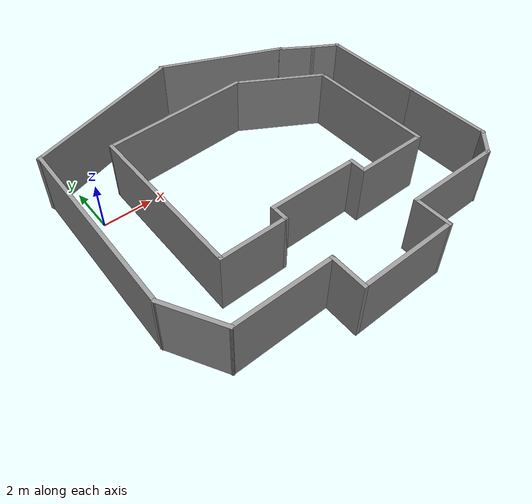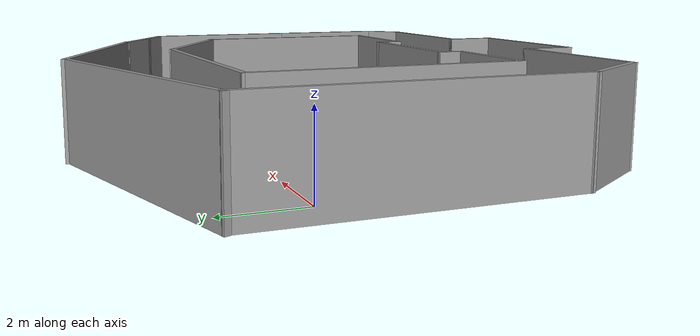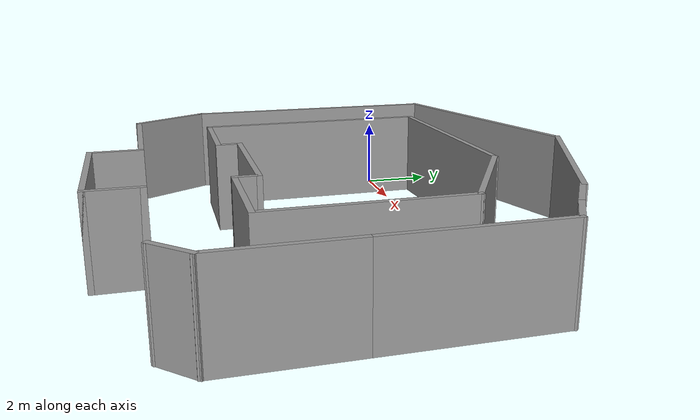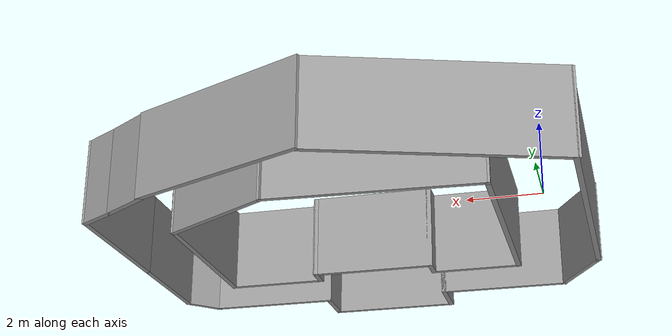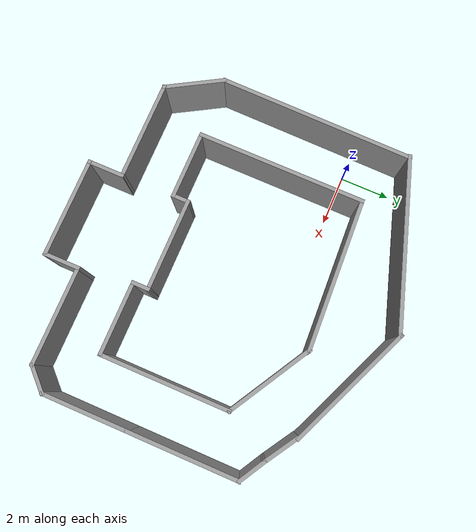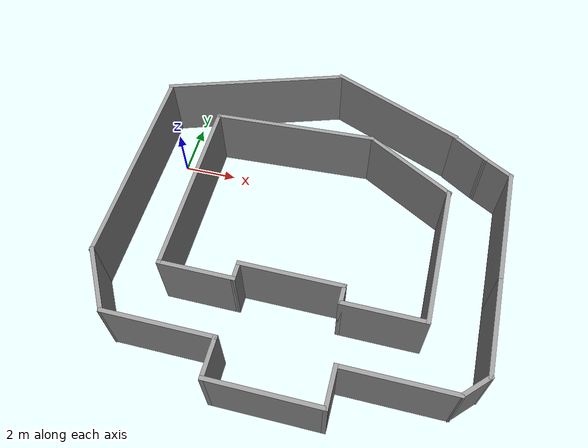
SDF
<?xml version='1.0'?>
<sdf version='1.6'>
  <model name='TrackModel'>
    <pose frame=''>5.68322 -2.42706 0 0 -0 0</pose>
    <link name='Wall_0'>
      <collision name='Wall_0_Collision'>
        <geometry>
          <box>
            <size>7.82505 0.15 2.5</size>
          </box>
        </geometry>
        <pose frame=''>0 0 1.25 0 -0 0</pose>
      </collision>
      <visual name='Wall_0_Visual'>
        <pose frame=''>0 0 1.25 0 -0 0</pose>
        <geometry>
          <box>
            <size>7.82505 0.15 2.5</size>
          </box>
        </geometry>
        <material>
          <script>
            <uri>file://media/materials/scripts/gazebo.material</uri>
            <name>Gazebo/Grey</name>
          </script>
          <ambient>1 1 1 1</ambient>
        </material>
        <meta>
          <layer>0</layer>
        </meta>
      </visual>
      <pose frame=''>-6.71276 0.604367 0 0 0 -1.58134</pose>
    </link>
    <link name='Wall_1'>
      <collision name='Wall_1_Collision'>
        <geometry>
          <box>
            <size>2.5 0.15 2.5</size>
          </box>
        </geometry>
        <pose frame=''>0 0 1.25 0 -0 0</pose>
      </collision>
      <visual name='Wall_1_Visual'>
        <pose frame=''>0 0 1.25 0 -0 0</pose>
        <geometry>
          <box>
            <size>2.5 0.15 2.5</size>
          </box>
        </geometry>
        <material>
          <script>
            <uri>file://media/materials/scripts/gazebo.material</uri>
            <name>Gazebo/Grey</name>
          </script>
          <ambient>1 1 1 1</ambient>
        </material>
        <meta>
          <layer>0</layer>
        </meta>
      </visual>
      <pose frame=''>-6.16572 -4.25052 0 0 0 -1.0472</pose>
    </link>
    <link name='Wall_10'>
      <collision name='Wall_10_Collision'>
        <geometry>
          <box>
            <size>1.25 0.15 2.5</size>
          </box>
        </geometry>
        <pose frame=''>0 0 1.25 0 -0 0</pose>
      </collision>
      <visual name='Wall_10_Visual'>
        <pose frame=''>0 0 1.25 0 -0 0</pose>
        <geometry>
          <box>
            <size>1.25 0.15 2.5</size>
          </box>
        </geometry>
        <material>
          <script>
            <uri>file://media/materials/scripts/gazebo.material</uri>
            <name>Gazebo/Grey</name>
          </script>
          <ambient>1 1 1 1</ambient>
        </material>
        <meta>
          <layer>0</layer>
        </meta>
      </visual>
      <pose frame=''>6.27329 3.48471 0 0 -0 2.61799</pose>
    </link>
    <link name='Wall_11'>
      <collision name='Wall_11_Collision'>
        <geometry>
          <box>
            <size>1.5716 0.15 2.5</size>
          </box>
        </geometry>
        <pose frame=''>0 0 1.25 0 -0 0</pose>
      </collision>
      <visual name='Wall_11_Visual'>
        <pose frame=''>0 0 1.25 0 -0 0</pose>
        <geometry>
          <box>
            <size>1.5716 0.15 2.5</size>
          </box>
        </geometry>
        <material>
          <script>
            <uri>file://media/materials/scripts/gazebo.material</uri>
            <name>Gazebo/Grey</name>
          </script>
          <ambient>1 1 1 1</ambient>
        </material>
        <meta>
          <layer>0</layer>
        </meta>
      </visual>
      <pose frame=''>5.19483 4.13742 0 0 -0 2.58135</pose>
    </link>
    <link name='Wall_12'>
      <collision name='Wall_12_Collision'>
        <geometry>
          <box>
            <size>5.41078 0.15 2.5</size>
          </box>
        </geometry>
        <pose frame=''>0 0 1.25 0 -0 0</pose>
      </collision>
      <visual name='Wall_12_Visual'>
        <pose frame=''>0 0 1.25 0 -0 0</pose>
        <geometry>
          <box>
            <size>5.41078 0.15 2.5</size>
          </box>
        </geometry>
        <material>
          <script>
            <uri>file://media/materials/scripts/gazebo.material</uri>
            <name>Gazebo/Grey</name>
          </script>
          <ambient>1 1 1 1</ambient>
        </material>
        <meta>
          <layer>0</layer>
        </meta>
      </visual>
      <pose frame=''>2.16798 5.57524 0 0 -0 2.74352</pose>
    </link>
    <link name='Wall_13'>
      <collision name='Wall_13_Collision'>
        <geometry>
          <box>
            <size>6.94294 0.15 2.5</size>
          </box>
        </geometry>
        <pose frame=''>0 0 1.25 0 -0 0</pose>
      </collision>
      <visual name='Wall_13_Visual'>
        <pose frame=''>0 0 1.25 0 -0 0</pose>
        <geometry>
          <box>
            <size>6.94294 0.15 2.5</size>
          </box>
        </geometry>
        <material>
          <script>
            <uri>file://media/materials/scripts/gazebo.material</uri>
            <name>Gazebo/Grey</name>
          </script>
          <ambient>1 1 1 1</ambient>
        </material>
        <meta>
          <layer>0</layer>
        </meta>
      </visual>
      <pose frame=''>-3.48475 5.49806 0 0 0 -2.82532</pose>
    </link>
    <link name='Wall_17'>
      <collision name='Wall_17_Collision'>
        <geometry>
          <box>
            <size>6.75 0.15 2.5</size>
          </box>
        </geometry>
        <pose frame=''>0 0 1.25 0 -0 0</pose>
      </collision>
      <visual name='Wall_17_Visual'>
        <pose frame=''>0 0 1.25 0 -0 0</pose>
        <geometry>
          <box>
            <size>6.75 0.15 2.5</size>
          </box>
        </geometry>
        <material>
          <script>
            <uri>file://media/materials/scripts/gazebo.material</uri>
            <name>Gazebo/Grey</name>
          </script>
          <ambient>1 1 1 1</ambient>
        </material>
        <meta>
          <layer>0</layer>
        </meta>
      </visual>
      <pose frame=''>-4.38251 0.129642 0 0 0 -1.5708</pose>
    </link>
    <link name='Wall_18'>
      <collision name='Wall_18_Collision'>
        <geometry>
          <box>
            <size>2.75 0.15 2.5</size>
          </box>
        </geometry>
        <pose frame=''>0 0 1.25 0 -0 0</pose>
      </collision>
      <visual name='Wall_18_Visual'>
        <pose frame=''>0 0 1.25 0 -0 0</pose>
        <geometry>
          <box>
            <size>2.75 0.15 2.5</size>
          </box>
        </geometry>
        <material>
          <script>
            <uri>file://media/materials/scripts/gazebo.material</uri>
            <name>Gazebo/Grey</name>
          </script>
          <ambient>1 1 1 1</ambient>
        </material>
        <meta>
          <layer>0</layer>
        </meta>
      </visual>
      <pose frame=''>-3.08251 -3.17036 0 0 -0 0</pose>
    </link>
    <link name='Wall_19'>
      <collision name='Wall_19_Collision'>
        <geometry>
          <box>
            <size>0.75 0.15 2.5</size>
          </box>
        </geometry>
        <pose frame=''>0 0 1.25 0 -0 0</pose>
      </collision>
      <visual name='Wall_19_Visual'>
        <pose frame=''>0 0 1.25 0 -0 0</pose>
        <geometry>
          <box>
            <size>0.75 0.15 2.5</size>
          </box>
        </geometry>
        <material>
          <script>
            <uri>file://media/materials/scripts/gazebo.material</uri>
            <name>Gazebo/Grey</name>
          </script>
          <ambient>1 1 1 1</ambient>
        </material>
        <meta>
          <layer>0</layer>
        </meta>
      </visual>
      <pose frame=''>-1.78251 -2.87036 0 0 -0 1.5708</pose>
    </link>
    <link name='Wall_2'>
      <collision name='Wall_2_Collision'>
        <geometry>
          <box>
            <size>4 0.15 2.5</size>
          </box>
        </geometry>
        <pose frame=''>0 0 1.25 0 -0 0</pose>
      </collision>
      <visual name='Wall_2_Visual'>
        <pose frame=''>0 0 1.25 0 -0 0</pose>
        <geometry>
          <box>
            <size>4 0.15 2.5</size>
          </box>
        </geometry>
        <material>
          <script>
            <uri>file://media/materials/scripts/gazebo.material</uri>
            <name>Gazebo/Grey</name>
          </script>
          <ambient>1 1 1 1</ambient>
        </material>
        <meta>
          <layer>0</layer>
        </meta>
      </visual>
      <pose frame=''>-3.65322 -5.26811 0 0 -0 0</pose>
    </link>
    <link name='Wall_20'>
      <collision name='Wall_20_Collision'>
        <geometry>
          <box>
            <size>3.75 0.15 2.5</size>
          </box>
        </geometry>
        <pose frame=''>0 0 1.25 0 -0 0</pose>
      </collision>
      <visual name='Wall_20_Visual'>
        <pose frame=''>0 0 1.25 0 -0 0</pose>
        <geometry>
          <box>
            <size>3.75 0.15 2.5</size>
          </box>
        </geometry>
        <material>
          <script>
            <uri>file://media/materials/scripts/gazebo.material</uri>
            <name>Gazebo/Grey</name>
          </script>
          <ambient>1 1 1 1</ambient>
        </material>
        <meta>
          <layer>0</layer>
        </meta>
      </visual>
      <pose frame=''>0.017494 -2.57036 0 0 -0 0</pose>
    </link>
    <link name='Wall_21'>
      <collision name='Wall_21_Collision'>
        <geometry>
          <box>
            <size>0.75 0.15 2.5</size>
          </box>
        </geometry>
        <pose frame=''>0 0 1.25 0 -0 0</pose>
      </collision>
      <visual name='Wall_21_Visual'>
        <pose frame=''>0 0 1.25 0 -0 0</pose>
        <geometry>
          <box>
            <size>0.75 0.15 2.5</size>
          </box>
        </geometry>
        <material>
          <script>
            <uri>file://media/materials/scripts/gazebo.material</uri>
            <name>Gazebo/Grey</name>
          </script>
          <ambient>1 1 1 1</ambient>
        </material>
        <meta>
          <layer>0</layer>
        </meta>
      </visual>
      <pose frame=''>1.81749 -2.87036 0 0 0 -1.5708</pose>
    </link>
    <link name='Wall_22'>
      <collision name='Wall_22_Collision'>
        <geometry>
          <box>
            <size>3 0.15 2.5</size>
          </box>
        </geometry>
        <pose frame=''>0 0 1.25 0 -0 0</pose>
      </collision>
      <visual name='Wall_22_Visual'>
        <pose frame=''>0 0 1.25 0 -0 0</pose>
        <geometry>
          <box>
            <size>3 0.15 2.5</size>
          </box>
        </geometry>
        <material>
          <script>
            <uri>file://media/materials/scripts/gazebo.material</uri>
            <name>Gazebo/Grey</name>
          </script>
          <ambient>1 1 1 1</ambient>
        </material>
        <meta>
          <layer>0</layer>
        </meta>
      </visual>
      <pose frame=''>3.24249 -3.17036 0 0 -0 0</pose>
    </link>
    <link name='Wall_23'>
      <collision name='Wall_23_Collision'>
        <geometry>
          <box>
            <size>5.25 0.15 2.5</size>
          </box>
        </geometry>
        <pose frame=''>0 0 1.25 0 -0 0</pose>
      </collision>
      <visual name='Wall_23_Visual'>
        <pose frame=''>0 0 1.25 0 -0 0</pose>
        <geometry>
          <box>
            <size>5.25 0.15 2.5</size>
          </box>
        </geometry>
        <material>
          <script>
            <uri>file://media/materials/scripts/gazebo.material</uri>
            <name>Gazebo/Grey</name>
          </script>
          <ambient>1 1 1 1</ambient>
        </material>
        <meta>
          <layer>0</layer>
        </meta>
      </visual>
      <pose frame=''>4.66749 -0.620358 0 0 -0 1.5708</pose>
    </link>
    <link name='Wall_24'>
      <collision name='Wall_24_Collision'>
        <geometry>
          <box>
            <size>3.75 0.15 2.5</size>
          </box>
        </geometry>
        <pose frame=''>0 0 1.25 0 -0 0</pose>
      </collision>
      <visual name='Wall_24_Visual'>
        <pose frame=''>0 0 1.25 0 -0 0</pose>
        <geometry>
          <box>
            <size>3.75 0.15 2.5</size>
          </box>
        </geometry>
        <material>
          <script>
            <uri>file://media/materials/scripts/gazebo.material</uri>
            <name>Gazebo/Grey</name>
          </script>
          <ambient>1 1 1 1</ambient>
        </material>
        <meta>
          <layer>0</layer>
        </meta>
      </visual>
      <pose frame=''>3.10865 2.82964 0 0 -0 2.61799</pose>
    </link>
    <link name='Wall_25'>
      <collision name='Wall_25_Collision'>
        <geometry>
          <box>
            <size>6.08989 0.15 2.5</size>
          </box>
        </geometry>
        <pose frame=''>0 0 1.25 0 -0 0</pose>
      </collision>
      <visual name='Wall_25_Visual'>
        <pose frame=''>0 0 1.25 0 -0 0</pose>
        <geometry>
          <box>
            <size>6.08989 0.15 2.5</size>
          </box>
        </geometry>
        <material>
          <script>
            <uri>file://media/materials/scripts/gazebo.material</uri>
            <name>Gazebo/Grey</name>
          </script>
          <ambient>1 1 1 1</ambient>
        </material>
        <meta>
          <layer>0</layer>
        </meta>
      </visual>
      <pose frame=''>-1.41635 3.57964 0 0 0 -3.09106</pose>
    </link>
    <link name='Wall_3'>
      <collision name='Wall_3_Collision'>
        <geometry>
          <box>
            <size>1.5 0.15 2.5</size>
          </box>
        </geometry>
        <pose frame=''>0 0 1.25 0 -0 0</pose>
      </collision>
      <visual name='Wall_3_Visual'>
        <pose frame=''>0 0 1.25 0 -0 0</pose>
        <geometry>
          <box>
            <size>1.5 0.15 2.5</size>
          </box>
        </geometry>
        <material>
          <script>
            <uri>file://media/materials/scripts/gazebo.material</uri>
            <name>Gazebo/Grey</name>
          </script>
          <ambient>1 1 1 1</ambient>
        </material>
        <meta>
          <layer>0</layer>
        </meta>
      </visual>
      <pose frame=''>-1.72822 -5.94311 0 0 0 -1.5708</pose>
    </link>
    <link name='Wall_4'>
      <collision name='Wall_4_Collision'>
        <geometry>
          <box>
            <size>4 0.15 2.5</size>
          </box>
        </geometry>
        <pose frame=''>0 0 1.25 0 -0 0</pose>
      </collision>
      <visual name='Wall_4_Visual'>
        <pose frame=''>0 0 1.25 0 -0 0</pose>
        <geometry>
          <box>
            <size>4 0.15 2.5</size>
          </box>
        </geometry>
        <material>
          <script>
            <uri>file://media/materials/scripts/gazebo.material</uri>
            <name>Gazebo/Grey</name>
          </script>
          <ambient>1 1 1 1</ambient>
        </material>
        <meta>
          <layer>0</layer>
        </meta>
      </visual>
      <pose frame=''>0.196784 -6.6181 0 0 -0 0</pose>
    </link>
    <link name='Wall_5'>
      <collision name='Wall_5_Collision'>
        <geometry>
          <box>
            <size>1.5 0.15 2.5</size>
          </box>
        </geometry>
        <pose frame=''>0 0 1.25 0 -0 0</pose>
      </collision>
      <visual name='Wall_5_Visual'>
        <pose frame=''>0 0 1.25 0 -0 0</pose>
        <geometry>
          <box>
            <size>1.5 0.15 2.5</size>
          </box>
        </geometry>
        <material>
          <script>
            <uri>file://media/materials/scripts/gazebo.material</uri>
            <name>Gazebo/Grey</name>
          </script>
          <ambient>1 1 1 1</ambient>
        </material>
        <meta>
          <layer>0</layer>
        </meta>
      </visual>
      <pose frame=''>2.12178 -5.94311 0 0 -0 1.5708</pose>
    </link>
    <link name='Wall_6'>
      <collision name='Wall_6_Collision'>
        <geometry>
          <box>
            <size>4 0.15 2.5</size>
          </box>
        </geometry>
        <pose frame=''>0 0 1.25 0 -0 0</pose>
      </collision>
      <visual name='Wall_6_Visual'>
        <pose frame=''>0 0 1.25 0 -0 0</pose>
        <geometry>
          <box>
            <size>4 0.15 2.5</size>
          </box>
        </geometry>
        <material>
          <script>
            <uri>file://media/materials/scripts/gazebo.material</uri>
            <name>Gazebo/Grey</name>
          </script>
          <ambient>1 1 1 1</ambient>
        </material>
        <meta>
          <layer>0</layer>
        </meta>
      </visual>
      <pose frame=''>4.04678 -5.26811 0 0 -0 0</pose>
    </link>
    <link name='Wall_7'>
      <collision name='Wall_7_Collision'>
        <geometry>
          <box>
            <size>1.25 0.15 2.5</size>
          </box>
        </geometry>
        <pose frame=''>0 0 1.25 0 -0 0</pose>
      </collision>
      <visual name='Wall_7_Visual'>
        <pose frame=''>0 0 1.25 0 -0 0</pose>
        <geometry>
          <box>
            <size>1.25 0.15 2.5</size>
          </box>
        </geometry>
        <material>
          <script>
            <uri>file://media/materials/scripts/gazebo.material</uri>
            <name>Gazebo/Grey</name>
          </script>
          <ambient>1 1 1 1</ambient>
        </material>
        <meta>
          <layer>0</layer>
        </meta>
      </visual>
      <pose frame=''>6.36069 -4.8792 0 0 -0 0.785398</pose>
    </link>
    <link name='Wall_8'>
      <collision name='Wall_8_Collision'>
        <geometry>
          <box>
            <size>3.5 0.15 2.5</size>
          </box>
        </geometry>
        <pose frame=''>0 0 1.25 0 -0 0</pose>
      </collision>
      <visual name='Wall_8_Visual'>
        <pose frame=''>0 0 1.25 0 -0 0</pose>
        <geometry>
          <box>
            <size>3.5 0.15 2.5</size>
          </box>
        </geometry>
        <material>
          <script>
            <uri>file://media/materials/scripts/gazebo.material</uri>
            <name>Gazebo/Grey</name>
          </script>
          <ambient>1 1 1 1</ambient>
        </material>
        <meta>
          <layer>0</layer>
        </meta>
      </visual>
      <pose frame=''>6.7496 -2.81529 0 0 -0 1.5708</pose>
    </link>
    <link name='Wall_9'>
      <collision name='Wall_9_Collision'>
        <geometry>
          <box>
            <size>4.5 0.15 2.5</size>
          </box>
        </geometry>
        <pose frame=''>0 0 1.25 0 -0 0</pose>
      </collision>
      <visual name='Wall_9_Visual'>
        <pose frame=''>0 0 1.25 0 -0 0</pose>
        <geometry>
          <box>
            <size>4.5 0.15 2.5</size>
          </box>
        </geometry>
        <material>
          <script>
            <uri>file://media/materials/scripts/gazebo.material</uri>
            <name>Gazebo/Grey</name>
          </script>
          <ambient>1 1 1 1</ambient>
        </material>
        <meta>
          <layer>0</layer>
        </meta>
      </visual>
      <pose frame=''>6.7496 1.03471 0 0 -0 1.5708</pose>
    </link>
    <static>1</static>
  </model>
</sdf>
